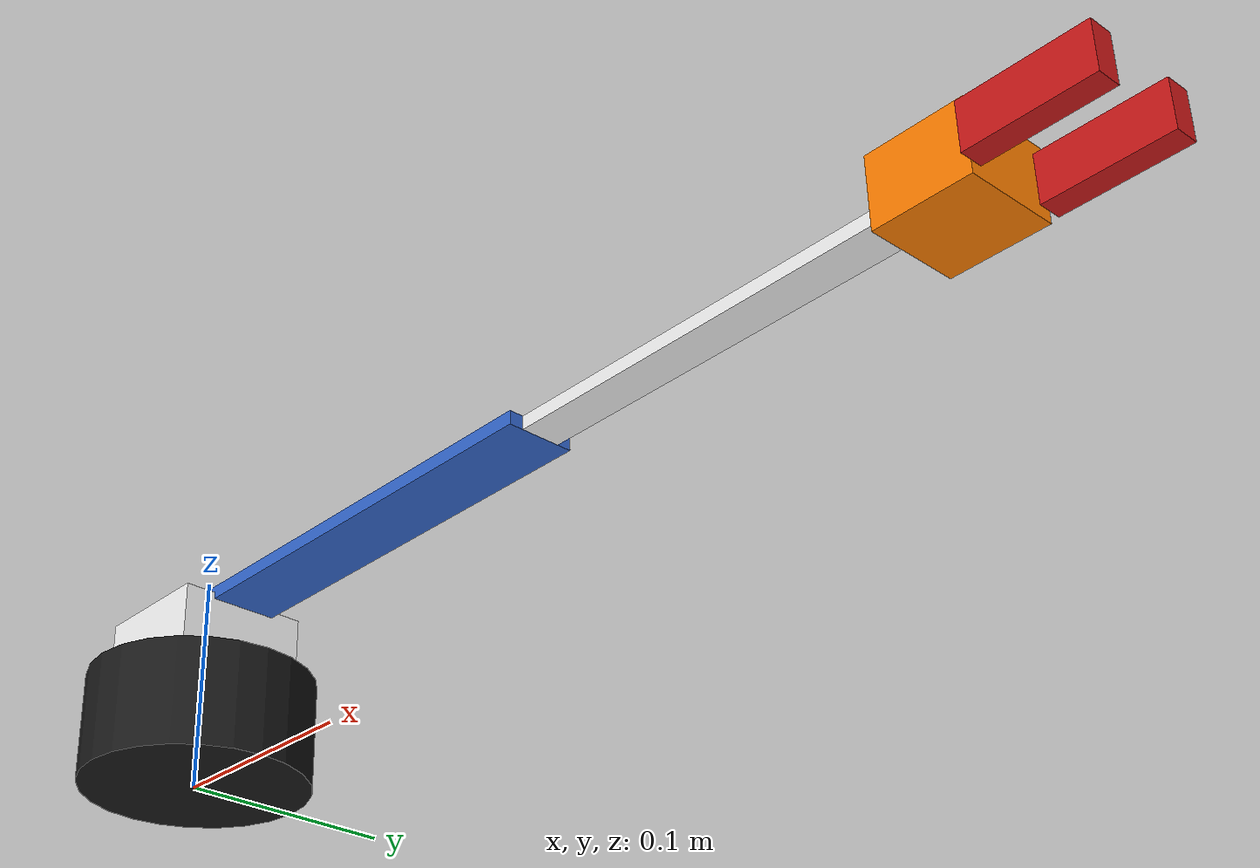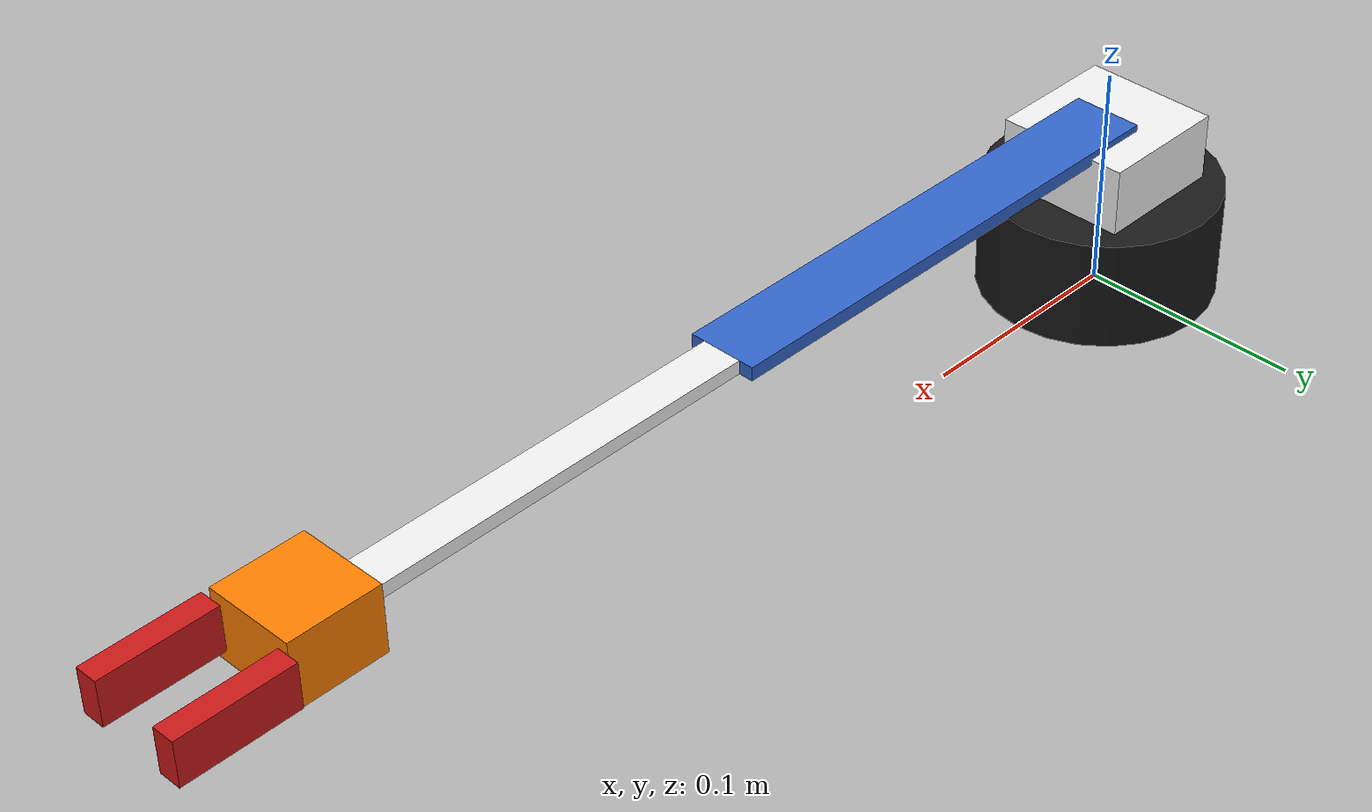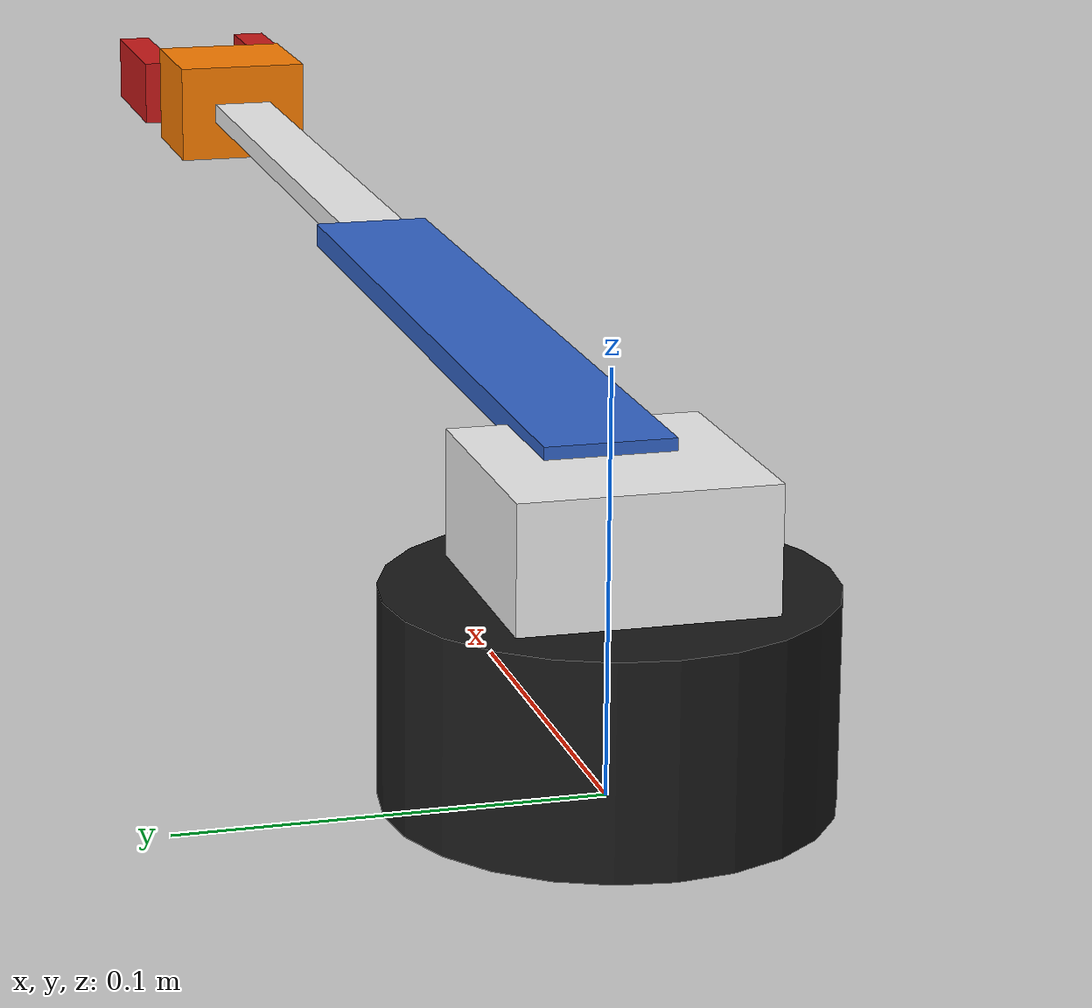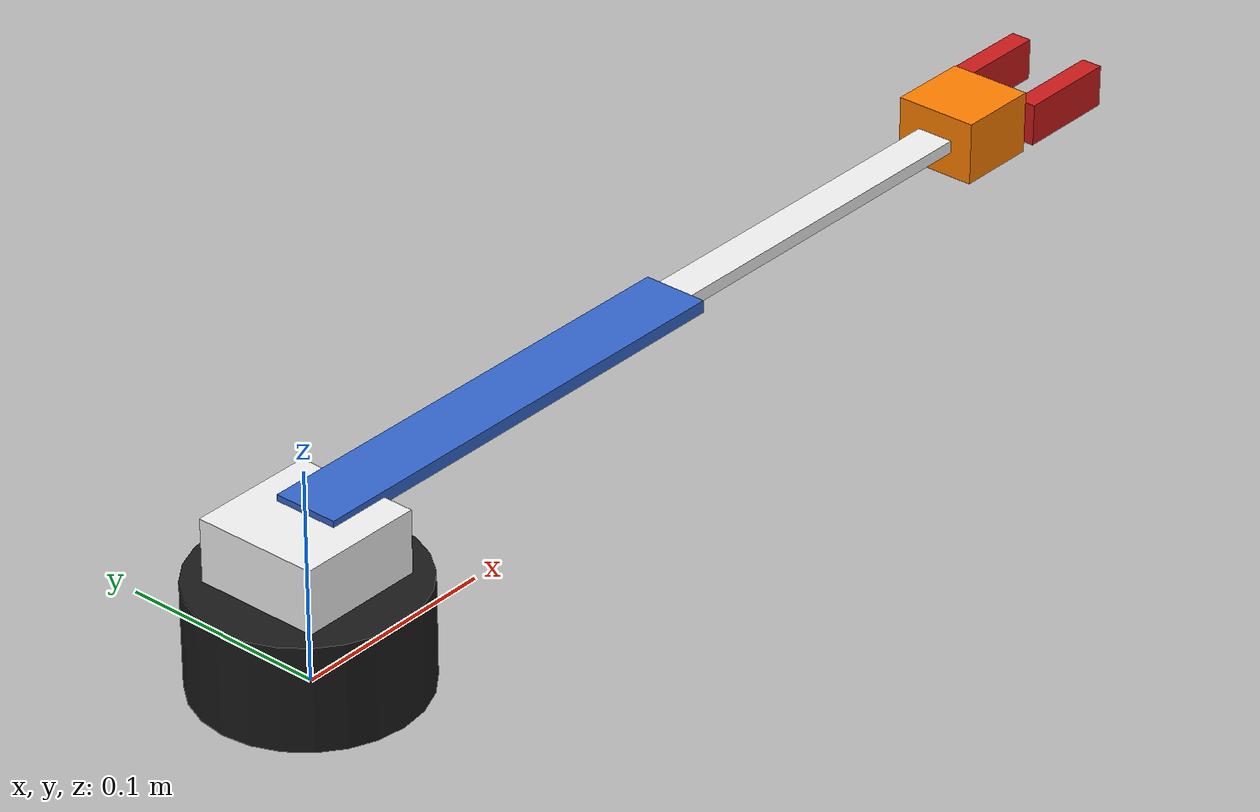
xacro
<?xml version="1.0"?>
<robot xmlns:xacro="http://www.ros.org/wiki/xacro" name="lite_arm_i2">

  <!-- URDF for Lite Arm i2 (3-DOF + optional gripper) -->
  <!-- Based on Thingiverse thing:480446         -->
  <!-- Design: Parallel linkage (like ABB IRB-660) -->
  <!-- NOTE: The actual arm uses a 4-bar parallel -->
  <!-- linkage mechanism. This URDF simplifies it -->
  <!-- to a serial chain for basic visualization. -->
  <!-- For accurate kinematics/MoveIt2, the       -->
  <!-- parallel linkage would need to be modeled. -->
  <!-- Dimensions extracted from STL files:      -->
  <!-- - Upper arm (20_21B.stl): 230mm           -->
  <!-- - Forearm (15C.stl): 180mm                -->

  <!-- Arm dimensions (extracted from STL files - Lite Arm i2) -->
  <!-- Base: 1B.stl = 104mm diameter, 6B.stl ~90mm -->
  <xacro:property name="base_height" value="0.050" />       <!-- 50mm (estimated from assembly) -->
  <xacro:property name="base_radius" value="0.052" />       <!-- 52mm (half of 104mm base plate) -->

  <!-- Upper arm: 20_21B.stl = 230.1mm -->
  <xacro:property name="upper_arm_length" value="0.2301" /> <!-- 230mm from STL -->
  <xacro:property name="upper_arm_width" value="0.031" />   <!-- 31mm from STL -->
  <xacro:property name="upper_arm_height" value="0.006" />  <!-- 6mm from STL -->

  <!-- Forearm: 15C.stl = 180.3mm -->
  <xacro:property name="forearm_length" value="0.1803" />   <!-- 180mm from STL -->
  <xacro:property name="forearm_width" value="0.018" />     <!-- 18mm from STL -->
  <xacro:property name="forearm_height" value="0.006" />    <!-- 6mm from STL -->

  <xacro:property name="gripper_length" value="0.080" />    <!-- 80mm -->
  <xacro:property name="gripper_finger_length" value="0.050" />  <!-- 50mm -->

  <!-- Joint limits (measure actual servo range) -->
  <xacro:property name="base_lower" value="${-pi/2}" />
  <xacro:property name="base_upper" value="${pi/2}" />

  <xacro:property name="shoulder_lower" value="${-pi/4}" />
  <xacro:property name="shoulder_upper" value="${pi/2}" />

  <xacro:property name="elbow_lower" value="${-pi/2}" />
  <xacro:property name="elbow_upper" value="${pi/2}" />

  <xacro:property name="gripper_lower" value="0.0" />       <!-- Closed -->
  <xacro:property name="gripper_upper" value="0.785" />     <!-- Open (45°) -->

  <!-- Material Definitions                      -->

  <material name="white">
    <color rgba="0.95 0.95 0.95 1.0"/>
  </material>

  <material name="black">
    <color rgba="0.1 0.1 0.1 1.0"/>
  </material>

  <material name="orange">
    <color rgba="1.0 0.5 0.0 1.0"/>
  </material>

  <material name="blue">
    <color rgba="0.2 0.4 0.8 1.0"/>
  </material>

  <material name="red">
    <color rgba="0.8 0.1 0.1 1.0"/>
  </material>

  <!-- Base Link (Fixed to Ground)               -->

  <link name="arm_base_link">
    <visual>
      <origin xyz="0 0 ${base_height/2}" rpy="0 0 0"/>
      <geometry>
        <cylinder length="${base_height}" radius="${base_radius}"/>
      </geometry>
      <material name="black"/>
    </visual>
    <collision>
      <origin xyz="0 0 ${base_height/2}" rpy="0 0 0"/>
      <geometry>
        <cylinder length="${base_height}" radius="${base_radius}"/>
      </geometry>
    </collision>
    <inertial>
      <origin xyz="0 0 ${base_height/2}" rpy="0 0 0"/>
      <mass value="0.5"/>
      <inertia ixx="0.001" ixy="0.0" ixz="0.0"
               iyy="0.001" iyz="0.0" izz="0.001"/>
    </inertial>
  </link>

  <!-- Joint 1: Base Rotation (Servo 1)          -->
  <!-- Rotates around Z axis (vertical)          -->

  <link name="base_rotate_link">
    <visual>
      <origin xyz="0 0 0.015" rpy="0 0 0"/>
      <geometry>
        <box size="0.06 0.06 0.03"/>
      </geometry>
      <material name="white"/>
    </visual>
    <collision>
      <origin xyz="0 0 0.015" rpy="0 0 0"/>
      <geometry>
        <box size="0.06 0.06 0.03"/>
      </geometry>
    </collision>
    <inertial>
      <origin xyz="0 0 0.015" rpy="0 0 0"/>
      <mass value="0.15"/>
      <inertia ixx="0.0001" ixy="0.0" ixz="0.0"
               iyy="0.0001" iyz="0.0" izz="0.0001"/>
    </inertial>
  </link>

  <joint name="base" type="revolute">
    <parent link="arm_base_link"/>
    <child link="base_rotate_link"/>
    <origin xyz="0 0 ${base_height}" rpy="0 0 0"/>
    <axis xyz="0 0 1"/>
    <limit lower="${base_lower}" upper="${base_upper}"
           effort="10.0" velocity="1.0"/>
    <dynamics damping="0.1" friction="0.1"/>
  </joint>

  <!-- Joint 2: Shoulder (Servo 2)               -->
  <!-- Rotates around Y axis (horizontal)        -->

  <link name="upper_arm_link">
    <visual>
      <origin xyz="${upper_arm_length/2} 0 0" rpy="0 0 0"/>
      <geometry>
        <box size="${upper_arm_length} ${upper_arm_width} ${upper_arm_height}"/>
      </geometry>
      <material name="blue"/>
    </visual>
    <collision>
      <origin xyz="${upper_arm_length/2} 0 0" rpy="0 0 0"/>
      <geometry>
        <box size="${upper_arm_length} ${upper_arm_width} ${upper_arm_height}"/>
      </geometry>
    </collision>
    <inertial>
      <origin xyz="${upper_arm_length/2} 0 0" rpy="0 0 0"/>
      <mass value="0.2"/>
      <inertia ixx="0.0001" ixy="0.0" ixz="0.0"
               iyy="0.001" iyz="0.0" izz="0.001"/>
    </inertial>
  </link>

  <joint name="shoulder" type="revolute">
    <parent link="base_rotate_link"/>
    <child link="upper_arm_link"/>
    <origin xyz="0 0 0.03" rpy="0 0 0"/>
    <axis xyz="0 1 0"/>
    <limit lower="${shoulder_lower}" upper="${shoulder_upper}"
           effort="10.0" velocity="1.0"/>
    <dynamics damping="0.1" friction="0.1"/>
  </joint>

  <!-- Joint 3: Elbow (Servo 3)                  -->
  <!-- Rotates around Y axis (horizontal)        -->

  <link name="forearm_link">
    <visual>
      <origin xyz="${forearm_length/2} 0 0" rpy="0 0 0"/>
      <geometry>
        <box size="${forearm_length} ${forearm_width} ${forearm_height}"/>
      </geometry>
      <material name="white"/>
    </visual>
    <collision>
      <origin xyz="${forearm_length/2} 0 0" rpy="0 0 0"/>
      <geometry>
        <box size="${forearm_length} ${forearm_width} ${forearm_height}"/>
      </geometry>
    </collision>
    <inertial>
      <origin xyz="${forearm_length/2} 0 0" rpy="0 0 0"/>
      <mass value="0.15"/>
      <inertia ixx="0.0001" ixy="0.0" ixz="0.0"
               iyy="0.0008" iyz="0.0" izz="0.0008"/>
    </inertial>
  </link>

  <joint name="elbow" type="revolute">
    <parent link="upper_arm_link"/>
    <child link="forearm_link"/>
    <origin xyz="${upper_arm_length} 0 0" rpy="0 0 0"/>
    <axis xyz="0 1 0"/>
    <limit lower="${elbow_lower}" upper="${elbow_upper}"
           effort="10.0" velocity="1.0"/>
    <dynamics damping="0.1" friction="0.1"/>
  </joint>

  <!-- Joint 4: Gripper (Servo 4)                -->
  <!-- Simple revolute joint for open/close      -->

  <link name="gripper_base_link">
    <visual>
      <origin xyz="0.02 0 0" rpy="0 0 0"/>
      <geometry>
        <box size="0.04 0.04 0.03"/>
      </geometry>
      <material name="orange"/>
    </visual>
    <collision>
      <origin xyz="0.02 0 0" rpy="0 0 0"/>
      <geometry>
        <box size="0.04 0.04 0.03"/>
      </geometry>
    </collision>
    <inertial>
      <origin xyz="0.02 0 0" rpy="0 0 0"/>
      <mass value="0.05"/>
      <inertia ixx="0.00001" ixy="0.0" ixz="0.0"
               iyy="0.00001" iyz="0.0" izz="0.00001"/>
    </inertial>
  </link>

  <joint name="gripper" type="revolute">
    <parent link="forearm_link"/>
    <child link="gripper_base_link"/>
    <origin xyz="${forearm_length} 0 0" rpy="0 0 0"/>
    <axis xyz="0 1 0"/>
    <limit lower="${gripper_lower}" upper="${gripper_upper}"
           effort="5.0" velocity="1.0"/>
    <dynamics damping="0.05" friction="0.05"/>
  </joint>

  <!-- Gripper Fingers (Visual/Collision)        -->

  <!-- Left finger -->
  <link name="gripper_left_finger">
    <visual>
      <origin xyz="${gripper_finger_length/2} 0.02 0" rpy="0 0 0"/>
      <geometry>
        <box size="${gripper_finger_length} 0.01 0.02"/>
      </geometry>
      <material name="red"/>
    </visual>
    <collision>
      <origin xyz="${gripper_finger_length/2} 0.02 0" rpy="0 0 0"/>
      <geometry>
        <box size="${gripper_finger_length} 0.01 0.02"/>
      </geometry>
    </collision>
    <inertial>
      <origin xyz="${gripper_finger_length/2} 0.02 0" rpy="0 0 0"/>
      <mass value="0.01"/>
      <inertia ixx="0.000001" ixy="0.0" ixz="0.0"
               iyy="0.000001" iyz="0.0" izz="0.000001"/>
    </inertial>
  </link>

  <joint name="gripper_left_finger_joint" type="fixed">
    <parent link="gripper_base_link"/>
    <child link="gripper_left_finger"/>
    <origin xyz="0.04 0 0" rpy="0 0 0"/>
  </joint>

  <!-- Right finger -->
  <link name="gripper_right_finger">
    <visual>
      <origin xyz="${gripper_finger_length/2} -0.02 0" rpy="0 0 0"/>
      <geometry>
        <box size="${gripper_finger_length} 0.01 0.02"/>
      </geometry>
      <material name="red"/>
    </visual>
    <collision>
      <origin xyz="${gripper_finger_length/2} -0.02 0" rpy="0 0 0"/>
      <geometry>
        <box size="${gripper_finger_length} 0.01 0.02"/>
      </geometry>
    </collision>
    <inertial>
      <origin xyz="${gripper_finger_length/2} -0.02 0" rpy="0 0 0"/>
      <mass value="0.01"/>
      <inertia ixx="0.000001" ixy="0.0" ixz="0.0"
               iyy="0.000001" iyz="0.0" izz="0.000001"/>
    </inertial>
  </link>

  <joint name="gripper_right_finger_joint" type="fixed">
    <parent link="gripper_base_link"/>
    <child link="gripper_right_finger"/>
    <origin xyz="0.04 0 0" rpy="0 0 0"/>
  </joint>

  <!-- End Effector Frame                        -->

  <link name="end_effector_link"/>

  <joint name="end_effector_joint" type="fixed">
    <parent link="gripper_base_link"/>
    <child link="end_effector_link"/>
    <origin xyz="${0.04 + gripper_finger_length} 0 0" rpy="0 0 0"/>
  </joint>

  <!-- Virtual Link for RViz Fixed Frame         -->

  <!-- This link serves as the root of the kinematic chain -->
  <link name="world"/>

  <joint name="world_to_base" type="fixed">
    <parent link="world"/>
    <child link="arm_base_link"/>
    <origin xyz="0 0 0" rpy="0 0 0"/>
  </joint>

</robot>
